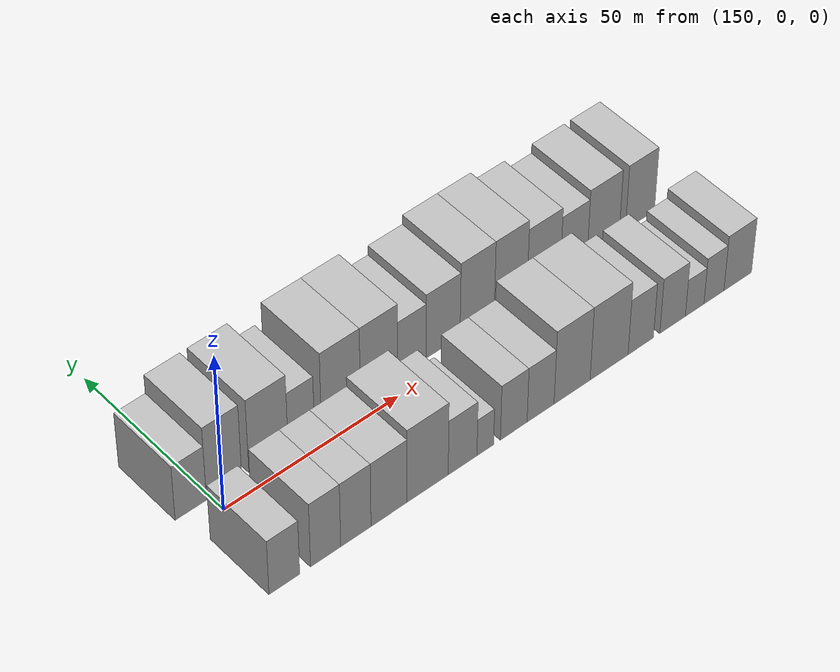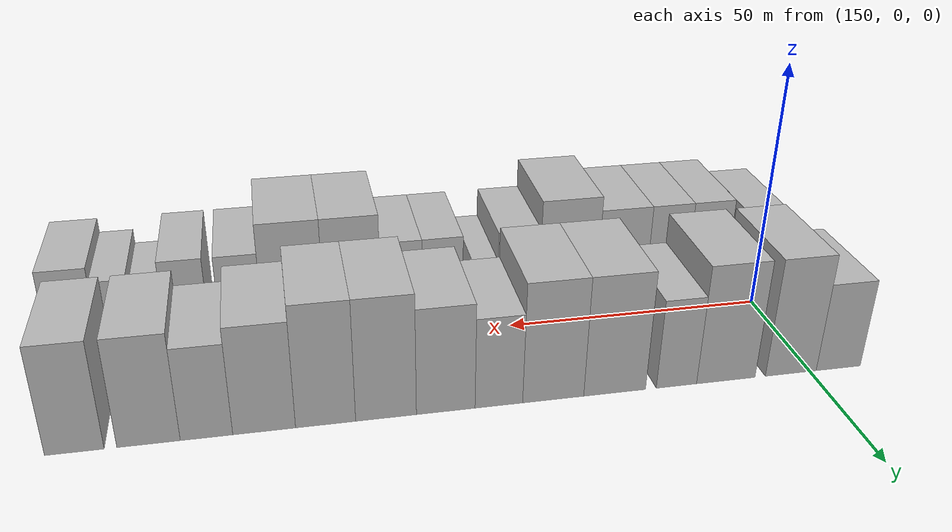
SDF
<sdf version="1.6">
 <world name="default">
  <model name="building_16">
   <static>1</static>
   <pose>144.4497 14.5000 0 0.000000 0.000000 1.570796</pose>
   <link name="link">
    <pose>0 0 9.00 0 0 0</pose>
    <collision name="collision"><geometry><box><size>20.0000 8.6659 18.0000</size></box></geometry></collision>
    <visual name="visual">
     <cast_shadows>0</cast_shadows>
     <geometry><box><size>20.0000 8.6659 18.0000</size></box></geometry>
     <material>
      <script>
       <uri>model://HANNAS_wall/materials/scripts</uri>
       <uri>model://HANNAS_wall/materials/textures</uri>
       <name>vrc/HANNAS_wall</name>
      </script>
     </material>
    </visual>
   </link>
  </model>
  <model name="building_17">
   <static>1</static>
   <pose>153.7060 14.5000 0 0.000000 0.000000 1.570796</pose>
   <link name="link">
    <pose>0 0 12.00 0 0 0</pose>
    <collision name="collision"><geometry><box><size>20.0000 9.8466 24.0000</size></box></geometry></collision>
    <visual name="visual">
     <cast_shadows>0</cast_shadows>
     <geometry><box><size>20.0000 9.8466 24.0000</size></box></geometry>
     <material>
      <script>
       <uri>model://HANNAS_wall/materials/scripts</uri>
       <uri>model://HANNAS_wall/materials/textures</uri>
       <name>vrc/HANNAS_wall</name>
      </script>
     </material>
    </visual>
   </link>
  </model>
  <model name="building_18">
   <static>1</static>
   <pose>166.1829 14.5000 0 0.000000 0.000000 1.570796</pose>
   <link name="link">
    <pose>0 0 12.00 0 0 0</pose>
    <collision name="collision"><geometry><box><size>20.0000 11.1072 24.0000</size></box></geometry></collision>
    <visual name="visual">
     <cast_shadows>0</cast_shadows>
     <geometry><box><size>20.0000 11.1072 24.0000</size></box></geometry>
     <material>
      <script>
       <uri>model://HANNAS_wall/materials/scripts</uri>
       <uri>model://HANNAS_wall/materials/textures</uri>
       <name>vrc/HANNAS_wall</name>
      </script>
     </material>
    </visual>
   </link>
  </model>
  <model name="building_19">
   <static>1</static>
   <pose>175.5025 14.5000 0 0.000000 0.000000 1.570796</pose>
   <link name="link">
    <pose>0 0 9.00 0 0 0</pose>
    <collision name="collision"><geometry><box><size>20.0000 7.5320 18.0000</size></box></geometry></collision>
    <visual name="visual">
     <cast_shadows>0</cast_shadows>
     <geometry><box><size>20.0000 7.5320 18.0000</size></box></geometry>
     <material>
      <script>
       <uri>model://HANNAS_wall/materials/scripts</uri>
       <uri>model://HANNAS_wall/materials/textures</uri>
       <name>vrc/HANNAS_wall</name>
      </script>
     </material>
    </visual>
   </link>
  </model>
  <model name="building_20">
   <static>1</static>
   <pose>186.9345 14.5000 0 0.000000 0.000000 1.570796</pose>
   <link name="link">
    <pose>0 0 12.00 0 0 0</pose>
    <collision name="collision"><geometry><box><size>20.0000 11.3319 24.0000</size></box></geometry></collision>
    <visual name="visual">
     <cast_shadows>0</cast_shadows>
     <geometry><box><size>20.0000 11.3319 24.0000</size></box></geometry>
     <material>
      <script>
       <uri>model://HANNAS_wall/materials/scripts</uri>
       <uri>model://HANNAS_wall/materials/textures</uri>
       <name>vrc/HANNAS_wall</name>
      </script>
     </material>
    </visual>
   </link>
  </model>
  <model name="building_21">
   <static>1</static>
   <pose>198.1048 14.5000 0 0.000000 0.000000 1.570796</pose>
   <link name="link">
    <pose>0 0 12.00 0 0 0</pose>
    <collision name="collision"><geometry><box><size>20.0000 11.0089 24.0000</size></box></geometry></collision>
    <visual name="visual">
     <cast_shadows>0</cast_shadows>
     <geometry><box><size>20.0000 11.0089 24.0000</size></box></geometry>
     <material>
      <script>
       <uri>model://HANNAS_wall/materials/scripts</uri>
       <uri>model://HANNAS_wall/materials/textures</uri>
       <name>vrc/HANNAS_wall</name>
      </script>
     </material>
    </visual>
   </link>
  </model>
  <model name="building_22">
   <static>1</static>
   <pose>207.8224 14.5000 0 0.000000 0.000000 1.570796</pose>
   <link name="link">
    <pose>0 0 9.00 0 0 0</pose>
    <collision name="collision"><geometry><box><size>20.0000 8.4262 18.0000</size></box></geometry></collision>
    <visual name="visual">
     <cast_shadows>0</cast_shadows>
     <geometry><box><size>20.0000 8.4262 18.0000</size></box></geometry>
     <material>
      <script>
       <uri>model://HANNAS_wall/materials/scripts</uri>
       <uri>model://HANNAS_wall/materials/textures</uri>
       <name>vrc/HANNAS_wall</name>
      </script>
     </material>
    </visual>
   </link>
  </model>
  <model name="building_23">
   <static>1</static>
   <pose>217.1418 14.5000 0 0.000000 0.000000 1.570796</pose>
   <link name="link">
    <pose>0 0 10.50 0 0 0</pose>
    <collision name="collision"><geometry><box><size>20.0000 10.2126 21.0000</size></box></geometry></collision>
    <visual name="visual">
     <cast_shadows>0</cast_shadows>
     <geometry><box><size>20.0000 10.2126 21.0000</size></box></geometry>
     <material>
      <script>
       <uri>model://HANNAS_wall/materials/scripts</uri>
       <uri>model://HANNAS_wall/materials/textures</uri>
       <name>vrc/HANNAS_wall</name>
      </script>
     </material>
    </visual>
   </link>
  </model>
  <model name="building_24">
   <static>1</static>
   <pose>227.4497 14.5000 0 0.000000 0.000000 1.570796</pose>
   <link name="link">
    <pose>0 0 12.00 0 0 0</pose>
    <collision name="collision"><geometry><box><size>20.0000 10.4031 24.0000</size></box></geometry></collision>
    <visual name="visual">
     <cast_shadows>0</cast_shadows>
     <geometry><box><size>20.0000 10.4031 24.0000</size></box></geometry>
     <material>
      <script>
       <uri>model://HANNAS_wall/materials/scripts</uri>
       <uri>model://HANNAS_wall/materials/textures</uri>
       <name>vrc/HANNAS_wall</name>
      </script>
     </material>
    </visual>
   </link>
  </model>
  <model name="building_25">
   <static>1</static>
   <pose>237.7021 14.5000 0 0.000000 0.000000 1.570796</pose>
   <link name="link">
    <pose>0 0 12.00 0 0 0</pose>
    <collision name="collision"><geometry><box><size>20.0000 10.1017 24.0000</size></box></geometry></collision>
    <visual name="visual">
     <cast_shadows>0</cast_shadows>
     <geometry><box><size>20.0000 10.1017 24.0000</size></box></geometry>
     <material>
      <script>
       <uri>model://HANNAS_wall/materials/scripts</uri>
       <uri>model://HANNAS_wall/materials/textures</uri>
       <name>vrc/HANNAS_wall</name>
      </script>
     </material>
    </visual>
   </link>
  </model>
  <model name="building_26">
   <static>1</static>
   <pose>247.9353 14.5000 0 0.000000 0.000000 1.570796</pose>
   <link name="link">
    <pose>0 0 10.50 0 0 0</pose>
    <collision name="collision"><geometry><box><size>20.0000 10.3646 21.0000</size></box></geometry></collision>
    <visual name="visual">
     <cast_shadows>0</cast_shadows>
     <geometry><box><size>20.0000 10.3646 21.0000</size></box></geometry>
     <material>
      <script>
       <uri>model://HANNAS_wall/materials/scripts</uri>
       <uri>model://HANNAS_wall/materials/textures</uri>
       <name>vrc/HANNAS_wall</name>
      </script>
     </material>
    </visual>
   </link>
  </model>
  <model name="building_27">
   <static>1</static>
   <pose>257.3785 14.5000 0 0.000000 0.000000 1.570796</pose>
   <link name="link">
    <pose>0 0 9.00 0 0 0</pose>
    <collision name="collision"><geometry><box><size>20.0000 8.5219 18.0000</size></box></geometry></collision>
    <visual name="visual">
     <cast_shadows>0</cast_shadows>
     <geometry><box><size>20.0000 8.5219 18.0000</size></box></geometry>
     <material>
      <script>
       <uri>model://HANNAS_wall/materials/scripts</uri>
       <uri>model://HANNAS_wall/materials/textures</uri>
       <name>vrc/HANNAS_wall</name>
      </script>
     </material>
    </visual>
   </link>
  </model>
  <model name="building_28">
   <static>1</static>
   <pose>266.7054 14.5000 0 0.000000 0.000000 1.570796</pose>
   <link name="link">
    <pose>0 0 10.50 0 0 0</pose>
    <collision name="collision"><geometry><box><size>20.0000 10.1320 21.0000</size></box></geometry></collision>
    <visual name="visual">
     <cast_shadows>0</cast_shadows>
     <geometry><box><size>20.0000 10.1320 21.0000</size></box></geometry>
     <material>
      <script>
       <uri>model://HANNAS_wall/materials/scripts</uri>
       <uri>model://HANNAS_wall/materials/textures</uri>
       <name>vrc/HANNAS_wall</name>
      </script>
     </material>
    </visual>
   </link>
  </model>
  <model name="building_29">
   <static>1</static>
   <pose>278.4371 14.5000 0 0.000000 0.000000 1.570796</pose>
   <link name="link">
    <pose>0 0 10.50 0 0 0</pose>
    <collision name="collision"><geometry><box><size>20.0000 9.3315 21.0000</size></box></geometry></collision>
    <visual name="visual">
     <cast_shadows>0</cast_shadows>
     <geometry><box><size>20.0000 9.3315 21.0000</size></box></geometry>
     <material>
      <script>
       <uri>model://HANNAS_wall/materials/scripts</uri>
       <uri>model://HANNAS_wall/materials/textures</uri>
       <name>vrc/HANNAS_wall</name>
      </script>
     </material>
    </visual>
   </link>
  </model>
  <model name="building_43">
   <static>1</static>
   <pose>146.8795 -14.5000 0 0.000000 0.000000 1.570796</pose>
   <link name="link">
    <pose>0 0 9.00 0 0 0</pose>
    <collision name="collision"><geometry><box><size>20.0000 8.4623 18.0000</size></box></geometry></collision>
    <visual name="visual">
     <cast_shadows>0</cast_shadows>
     <geometry><box><size>20.0000 8.4623 18.0000</size></box></geometry>
     <material>
      <script>
       <uri>model://HANNAS_wall/materials/scripts</uri>
       <uri>model://HANNAS_wall/materials/textures</uri>
       <name>vrc/HANNAS_wall</name>
      </script>
     </material>
    </visual>
   </link>
  </model>
  <model name="building_44">
   <static>1</static>
   <pose>158.3213 -14.5000 0 0.000000 0.000000 1.570796</pose>
   <link name="link">
    <pose>0 0 10.50 0 0 0</pose>
    <collision name="collision"><geometry><box><size>20.0000 8.4213 21.0000</size></box></geometry></collision>
    <visual name="visual">
     <cast_shadows>0</cast_shadows>
     <geometry><box><size>20.0000 8.4213 21.0000</size></box></geometry>
     <material>
      <script>
       <uri>model://HANNAS_wall/materials/scripts</uri>
       <uri>model://HANNAS_wall/materials/textures</uri>
       <name>vrc/HANNAS_wall</name>
      </script>
     </material>
    </visual>
   </link>
  </model>
  <model name="building_45">
   <static>1</static>
   <pose>166.7952 -14.5000 0 0.000000 0.000000 1.570796</pose>
   <link name="link">
    <pose>0 0 10.50 0 0 0</pose>
    <collision name="collision"><geometry><box><size>20.0000 8.5264 21.0000</size></box></geometry></collision>
    <visual name="visual">
     <cast_shadows>0</cast_shadows>
     <geometry><box><size>20.0000 8.5264 21.0000</size></box></geometry>
     <material>
      <script>
       <uri>model://HANNAS_wall/materials/scripts</uri>
       <uri>model://HANNAS_wall/materials/textures</uri>
       <name>vrc/HANNAS_wall</name>
      </script>
     </material>
    </visual>
   </link>
  </model>
  <model name="building_46">
   <static>1</static>
   <pose>176.2079 -14.5000 0 0.000000 0.000000 1.570796</pose>
   <link name="link">
    <pose>0 0 10.50 0 0 0</pose>
    <collision name="collision"><geometry><box><size>20.0000 10.2991 21.0000</size></box></geometry></collision>
    <visual name="visual">
     <cast_shadows>0</cast_shadows>
     <geometry><box><size>20.0000 10.2991 21.0000</size></box></geometry>
     <material>
      <script>
       <uri>model://HANNAS_wall/materials/scripts</uri>
       <uri>model://HANNAS_wall/materials/textures</uri>
       <name>vrc/HANNAS_wall</name>
      </script>
     </material>
    </visual>
   </link>
  </model>
  <model name="building_47">
   <static>1</static>
   <pose>187.2960 -14.5000 0 0.000000 0.000000 1.570796</pose>
   <link name="link">
    <pose>0 0 12.00 0 0 0</pose>
    <collision name="collision"><geometry><box><size>20.0000 11.8770 24.0000</size></box></geometry></collision>
    <visual name="visual">
     <cast_shadows>0</cast_shadows>
     <geometry><box><size>20.0000 11.8770 24.0000</size></box></geometry>
     <material>
      <script>
       <uri>model://HANNAS_wall/materials/scripts</uri>
       <uri>model://HANNAS_wall/materials/textures</uri>
       <name>vrc/HANNAS_wall</name>
      </script>
     </material>
    </visual>
   </link>
  </model>
  <model name="building_48">
   <static>1</static>
   <pose>197.4349 -14.5000 0 0.000000 0.000000 1.570796</pose>
   <link name="link">
    <pose>0 0 9.00 0 0 0</pose>
    <collision name="collision"><geometry><box><size>20.0000 8.4007 18.0000</size></box></geometry></collision>
    <visual name="visual">
     <cast_shadows>0</cast_shadows>
     <geometry><box><size>20.0000 8.4007 18.0000</size></box></geometry>
     <material>
      <script>
       <uri>model://HANNAS_wall/materials/scripts</uri>
       <uri>model://HANNAS_wall/materials/textures</uri>
       <name>vrc/HANNAS_wall</name>
      </script>
     </material>
    </visual>
   </link>
  </model>
  <model name="building_49">
   <static>1</static>
   <pose>204.0975 -14.5000 0 0.000000 0.000000 1.570796</pose>
   <link name="link">
    <pose>0 0 6.00 0 0 0</pose>
    <collision name="collision"><geometry><box><size>20.0000 4.9245 12.0000</size></box></geometry></collision>
    <visual name="visual">
     <cast_shadows>0</cast_shadows>
     <geometry><box><size>20.0000 4.9245 12.0000</size></box></geometry>
     <material>
      <script>
       <uri>model://HANNAS_wall/materials/scripts</uri>
       <uri>model://HANNAS_wall/materials/textures</uri>
       <name>vrc/HANNAS_wall</name>
      </script>
     </material>
    </visual>
   </link>
  </model>
  <model name="building_50">
   <static>1</static>
   <pose>212.5318 -14.5000 0 0.000000 0.000000 1.570796</pose>
   <link name="link">
    <pose>0 0 9.00 0 0 0</pose>
    <collision name="collision"><geometry><box><size>20.0000 7.9440 18.0000</size></box></geometry></collision>
    <visual name="visual">
     <cast_shadows>0</cast_shadows>
     <geometry><box><size>20.0000 7.9440 18.0000</size></box></geometry>
     <material>
      <script>
       <uri>model://HANNAS_wall/materials/scripts</uri>
       <uri>model://HANNAS_wall/materials/textures</uri>
       <name>vrc/HANNAS_wall</name>
      </script>
     </material>
    </visual>
   </link>
  </model>
  <model name="building_51">
   <static>1</static>
   <pose>220.5605 -14.5000 0 0.000000 0.000000 1.570796</pose>
   <link name="link">
    <pose>0 0 9.00 0 0 0</pose>
    <collision name="collision"><geometry><box><size>20.0000 8.1135 18.0000</size></box></geometry></collision>
    <visual name="visual">
     <cast_shadows>0</cast_shadows>
     <geometry><box><size>20.0000 8.1135 18.0000</size></box></geometry>
     <material>
      <script>
       <uri>model://HANNAS_wall/materials/scripts</uri>
       <uri>model://HANNAS_wall/materials/textures</uri>
       <name>vrc/HANNAS_wall</name>
      </script>
     </material>
    </visual>
   </link>
  </model>
  <model name="building_52">
   <static>1</static>
   <pose>230.0995 -14.5000 0 0.000000 0.000000 1.570796</pose>
   <link name="link">
    <pose>0 0 12.00 0 0 0</pose>
    <collision name="collision"><geometry><box><size>20.0000 10.9644 24.0000</size></box></geometry></collision>
    <visual name="visual">
     <cast_shadows>0</cast_shadows>
     <geometry><box><size>20.0000 10.9644 24.0000</size></box></geometry>
     <material>
      <script>
       <uri>model://HANNAS_wall/materials/scripts</uri>
       <uri>model://HANNAS_wall/materials/textures</uri>
       <name>vrc/HANNAS_wall</name>
      </script>
     </material>
    </visual>
   </link>
  </model>
  <model name="building_53">
   <static>1</static>
   <pose>241.4222 -14.5000 0 0.000000 0.000000 1.570796</pose>
   <link name="link">
    <pose>0 0 12.00 0 0 0</pose>
    <collision name="collision"><geometry><box><size>20.0000 11.6809 24.0000</size></box></geometry></collision>
    <visual name="visual">
     <cast_shadows>0</cast_shadows>
     <geometry><box><size>20.0000 11.6809 24.0000</size></box></geometry>
     <material>
      <script>
       <uri>model://HANNAS_wall/materials/scripts</uri>
       <uri>model://HANNAS_wall/materials/textures</uri>
       <name>vrc/HANNAS_wall</name>
      </script>
     </material>
    </visual>
   </link>
  </model>
  <model name="building_54">
   <static>1</static>
   <pose>251.2162 -14.5000 0 0.000000 0.000000 1.570796</pose>
   <link name="link">
    <pose>0 0 9.00 0 0 0</pose>
    <collision name="collision"><geometry><box><size>20.0000 7.9072 18.0000</size></box></geometry></collision>
    <visual name="visual">
     <cast_shadows>0</cast_shadows>
     <geometry><box><size>20.0000 7.9072 18.0000</size></box></geometry>
     <material>
      <script>
       <uri>model://HANNAS_wall/materials/scripts</uri>
       <uri>model://HANNAS_wall/materials/textures</uri>
       <name>vrc/HANNAS_wall</name>
      </script>
     </material>
    </visual>
   </link>
  </model>
  <model name="building_55">
   <static>1</static>
   <pose>261.1863 -14.5000 0 0.000000 0.000000 1.570796</pose>
   <link name="link">
    <pose>0 0 9.00 0 0 0</pose>
    <collision name="collision"><geometry><box><size>20.0000 8.0328 18.0000</size></box></geometry></collision>
    <visual name="visual">
     <cast_shadows>0</cast_shadows>
     <geometry><box><size>20.0000 8.0328 18.0000</size></box></geometry>
     <material>
      <script>
       <uri>model://HANNAS_wall/materials/scripts</uri>
       <uri>model://HANNAS_wall/materials/textures</uri>
       <name>vrc/HANNAS_wall</name>
      </script>
     </material>
    </visual>
   </link>
  </model>
  <model name="building_56">
   <static>1</static>
   <pose>268.1549 -14.5000 0 0.000000 0.000000 1.570796</pose>
   <link name="link">
    <pose>0 0 6.00 0 0 0</pose>
    <collision name="collision"><geometry><box><size>20.0000 5.9045 12.0000</size></box></geometry></collision>
    <visual name="visual">
     <cast_shadows>0</cast_shadows>
     <geometry><box><size>20.0000 5.9045 12.0000</size></box></geometry>
     <material>
      <script>
       <uri>model://HANNAS_wall/materials/scripts</uri>
       <uri>model://HANNAS_wall/materials/textures</uri>
       <name>vrc/HANNAS_wall</name>
      </script>
     </material>
    </visual>
   </link>
  </model>
  <model name="building_57">
   <static>1</static>
   <pose>274.2983 -14.5000 0 0.000000 0.000000 1.570796</pose>
   <link name="link">
    <pose>0 0 7.50 0 0 0</pose>
    <collision name="collision"><geometry><box><size>20.0000 6.3822 15.0000</size></box></geometry></collision>
    <visual name="visual">
     <cast_shadows>0</cast_shadows>
     <geometry><box><size>20.0000 6.3822 15.0000</size></box></geometry>
     <material>
      <script>
       <uri>model://HANNAS_wall/materials/scripts</uri>
       <uri>model://HANNAS_wall/materials/textures</uri>
       <name>vrc/HANNAS_wall</name>
      </script>
     </material>
    </visual>
   </link>
  </model>
  <model name="building_58">
   <static>1</static>
   <pose>281.9444 -14.5000 0 0.000000 0.000000 1.570796</pose>
   <link name="link">
    <pose>0 0 9.00 0 0 0</pose>
    <collision name="collision"><geometry><box><size>20.0000 8.9100 18.0000</size></box></geometry></collision>
    <visual name="visual">
     <cast_shadows>0</cast_shadows>
     <geometry><box><size>20.0000 8.9100 18.0000</size></box></geometry>
     <material>
      <script>
       <uri>model://HANNAS_wall/materials/scripts</uri>
       <uri>model://HANNAS_wall/materials/textures</uri>
       <name>vrc/HANNAS_wall</name>
      </script>
     </material>
    </visual>
   </link>
  </model>
 </world>
</sdf>
